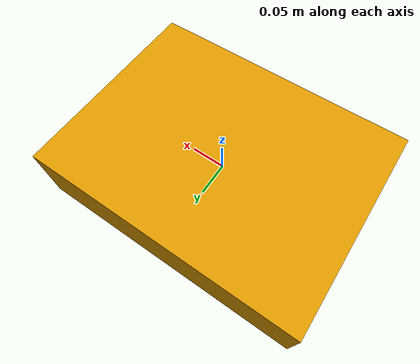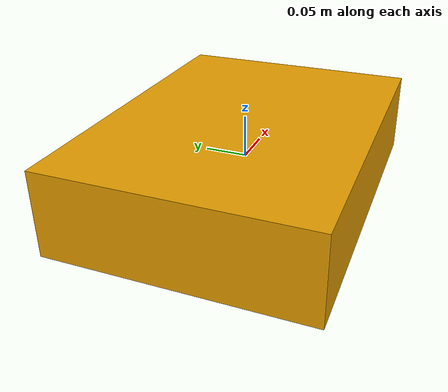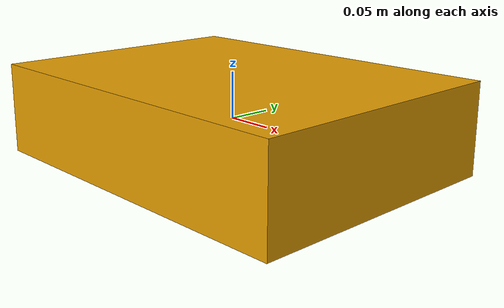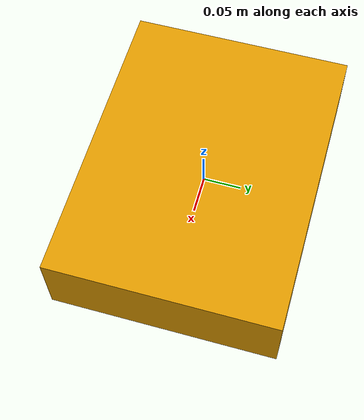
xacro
<?xml version="1.0"?>
<robot xmlns:xacro="http://www.ros.org/wiki/xacro" name="my_robot">

  <link name="base_link">
    <inertial>
      <mass value="5.0"/>
      <origin xyz="0 0 0"/>
      <inertia ixx="0.2" iyy="0.2" izz="0.2"
               ixy="0.0" ixz="0.0" iyz="0.0"/>
    </inertial>

    <visual>
      <geometry>
        <box size="0.4 0.3 0.1"/>
      </geometry>
    </visual>

    <collision>
      <geometry>
        <box size="0.4 0.3 0.1"/>
      </geometry>
    </collision>
  </link>
 <ros2_control name="GazeboSystem" type="system">
  <hardware>
    <plugin>gz_ros2_control/GazeboSystem</plugin>
  </hardware>

  <joint name="left_wheel_joint">
    <command_interface name="velocity"/>
    <state_interface name="position"/>
    <state_interface name="velocity"/>
  </joint>

  <joint name="right_wheel_joint">
    <command_interface name="velocity"/>
    <state_interface name="position"/>
    <state_interface name="velocity"/>
  </joint>
</ros2_control>

</robot>
